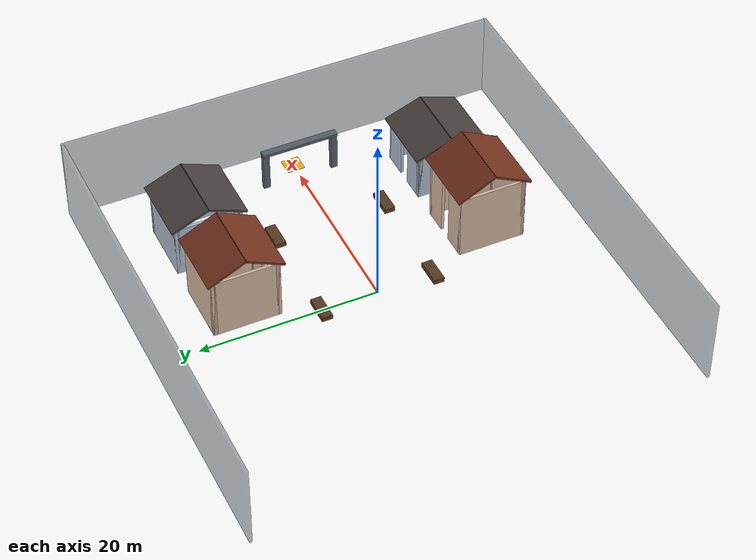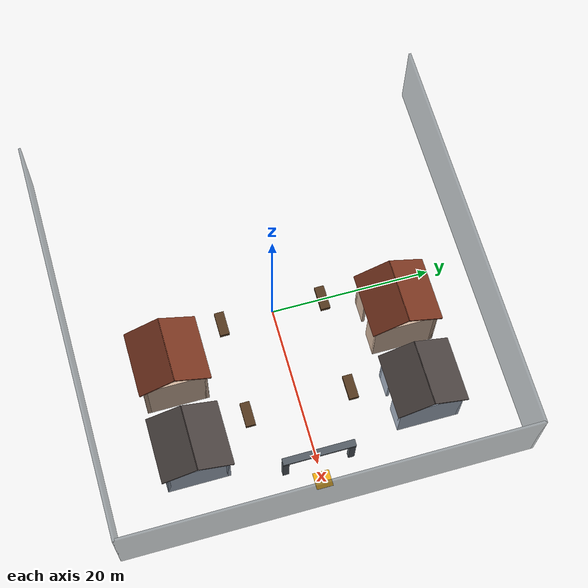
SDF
<sdf version="1.6">
 <world name="ego_residential_gable_50x50x10">
  <include><uri>model://sun</uri></include>
  <model name="north_boundary">
   <static>true</static>
   <pose>0.000 24.850 5.000 0 0 0</pose>
   <link name="link">
    <collision name="collision"><geometry><box><size>50.000 0.300 10.000</size></box></geometry></collision>
    <visual name="visual">
     <geometry><box><size>50.000 0.300 10.000</size></box></geometry>
     <material><ambient>0.200 0.250 0.280 1.000</ambient><diffuse>0.200 0.250 0.280 1.000</diffuse></material>
     <transparency>0.55</transparency>
    </visual>
   </link>
  </model>
  <model name="south_boundary">
   <static>true</static>
   <pose>0.000 -24.850 5.000 0 0 0</pose>
   <link name="link">
    <collision name="collision"><geometry><box><size>50.000 0.300 10.000</size></box></geometry></collision>
    <visual name="visual">
     <geometry><box><size>50.000 0.300 10.000</size></box></geometry>
     <material><ambient>0.200 0.250 0.280 1.000</ambient><diffuse>0.200 0.250 0.280 1.000</diffuse></material>
     <transparency>0.55</transparency>
    </visual>
   </link>
  </model>
  <model name="east_boundary">
   <static>true</static>
   <pose>24.850 0.000 5.000 0 0 0</pose>
   <link name="link">
    <collision name="collision"><geometry><box><size>0.300 50.000 10.000</size></box></geometry></collision>
    <visual name="visual">
     <geometry><box><size>0.300 50.000 10.000</size></box></geometry>
     <material><ambient>0.200 0.250 0.280 1.000</ambient><diffuse>0.200 0.250 0.280 1.000</diffuse></material>
     <transparency>0.55</transparency>
    </visual>
   </link>
  </model>
  <model name="east_goal_pad">
   <static>true</static>
   <pose>22.000 0.000 0.030 0 0 0</pose>
   <link name="link">
    <collision name="collision"><geometry><box><size>2.000 2.000 0.060</size></box></geometry></collision>
    <visual name="visual">
     <geometry><box><size>2.000 2.000 0.060</size></box></geometry>
     <material><ambient>0.950 0.680 0.080 1.000</ambient><diffuse>0.950 0.680 0.080 1.000</diffuse></material>
     <transparency>0.00</transparency>
    </visual>
   </link>
  </model>
  <model name="east_gate_left_post">
   <static>true</static>
   <pose>20.000 -4.000 2.250 0 0 0</pose>
   <link name="link">
    <collision name="collision"><geometry><box><size>0.550 0.750 4.500</size></box></geometry></collision>
    <visual name="visual">
     <geometry><box><size>0.550 0.750 4.500</size></box></geometry>
     <material><ambient>0.340 0.370 0.400 1.000</ambient><diffuse>0.340 0.370 0.400 1.000</diffuse></material>
     <transparency>0.00</transparency>
    </visual>
   </link>
  </model>
  <model name="east_gate_right_post">
   <static>true</static>
   <pose>20.000 4.000 2.250 0 0 0</pose>
   <link name="link">
    <collision name="collision"><geometry><box><size>0.550 0.750 4.500</size></box></geometry></collision>
    <visual name="visual">
     <geometry><box><size>0.550 0.750 4.500</size></box></geometry>
     <material><ambient>0.340 0.370 0.400 1.000</ambient><diffuse>0.340 0.370 0.400 1.000</diffuse></material>
     <transparency>0.00</transparency>
    </visual>
   </link>
  </model>
  <model name="east_gate_roof">
   <static>true</static>
   <pose>20.000 0.000 4.650 0 0 0</pose>
   <link name="link">
    <collision name="collision"><geometry><box><size>0.850 8.750 0.350</size></box></geometry></collision>
    <visual name="visual">
     <geometry><box><size>0.850 8.750 0.350</size></box></geometry>
     <material><ambient>0.340 0.370 0.400 1.000</ambient><diffuse>0.340 0.370 0.400 1.000</diffuse></material>
     <transparency>0.00</transparency>
    </visual>
   </link>
  </model>
  <model name="south_planter_2">
   <static>true</static>
   <pose>0.000 -6.400 0.280 0 0 0</pose>
   <link name="link">
    <collision name="collision"><geometry><box><size>3.000 1.200 0.560</size></box></geometry></collision>
    <visual name="visual">
     <geometry><box><size>3.000 1.200 0.560</size></box></geometry>
     <material><ambient>0.340 0.230 0.130 1.000</ambient><diffuse>0.340 0.230 0.130 1.000</diffuse></material>
     <transparency>0.00</transparency>
    </visual>
   </link>
  </model>
  <model name="south_planter_3">
   <static>true</static>
   <pose>12.000 -6.400 0.280 0 0 0</pose>
   <link name="link">
    <collision name="collision"><geometry><box><size>3.000 1.200 0.560</size></box></geometry></collision>
    <visual name="visual">
     <geometry><box><size>3.000 1.200 0.560</size></box></geometry>
     <material><ambient>0.340 0.230 0.130 1.000</ambient><diffuse>0.340 0.230 0.130 1.000</diffuse></material>
     <transparency>0.00</transparency>
    </visual>
   </link>
  </model>
  <model name="north_planter_2">
   <static>true</static>
   <pose>0.000 6.400 0.280 0 0 0</pose>
   <link name="link">
    <collision name="collision"><geometry><box><size>3.000 1.200 0.560</size></box></geometry></collision>
    <visual name="visual">
     <geometry><box><size>3.000 1.200 0.560</size></box></geometry>
     <material><ambient>0.340 0.230 0.130 1.000</ambient><diffuse>0.340 0.230 0.130 1.000</diffuse></material>
     <transparency>0.00</transparency>
    </visual>
   </link>
  </model>
  <model name="north_planter_3">
   <static>true</static>
   <pose>12.000 6.400 0.280 0 0 0</pose>
   <link name="link">
    <collision name="collision"><geometry><box><size>3.000 1.200 0.560</size></box></geometry></collision>
    <visual name="visual">
     <geometry><box><size>3.000 1.200 0.560</size></box></geometry>
     <material><ambient>0.340 0.230 0.130 1.000</ambient><diffuse>0.340 0.230 0.130 1.000</diffuse></material>
     <transparency>0.00</transparency>
    </visual>
   </link>
  </model>
  <model name="residence_03">
   <static>true</static>
   <pose>5.000 14.000 0 0 0 0</pose>
   <link name="building_link">
    <collision name="roof_north_collision">
     <pose>0.000 2.075 8.188 -0.453768 0.000000 0.000000</pose>
     <geometry><box><size>7.900 4.797 0.240</size></box></geometry>
    </collision>
    <visual name="roof_north_visual">
     <pose>0.000 2.075 8.188 -0.453768 0.000000 0.000000</pose>
     <geometry><box><size>7.900 4.797 0.240</size></box></geometry>
     <material><ambient>0.460 0.200 0.120 1.000</ambient><diffuse>0.460 0.200 0.120 1.000</diffuse></material>
    </visual>
    <collision name="roof_south_collision">
     <pose>0.000 -2.075 8.188 0.453768 0.000000 0.000000</pose>
     <geometry><box><size>7.900 4.797 0.240</size></box></geometry>
    </collision>
    <visual name="roof_south_visual">
     <pose>0.000 -2.075 8.188 0.453768 0.000000 0.000000</pose>
     <geometry><box><size>7.900 4.797 0.240</size></box></geometry>
     <material><ambient>0.460 0.200 0.120 1.000</ambient><diffuse>0.460 0.200 0.120 1.000</diffuse></material>
    </visual>
    <collision name="back_wall_collision">
     <pose>0.000 3.630 3.588 0.000000 0.000000 0.000000</pose>
     <geometry><box><size>7.200 0.340 7.176</size></box></geometry>
    </collision>
    <visual name="back_wall_visual">
     <pose>0.000 3.630 3.588 0.000000 0.000000 0.000000</pose>
     <geometry><box><size>7.200 0.340 7.176</size></box></geometry>
     <material><ambient>0.820 0.710 0.620 1.000</ambient><diffuse>0.820 0.710 0.620 1.000</diffuse></material>
    </visual>
    <collision name="left_wall_collision">
     <pose>-3.430 0.000 3.588 0.000000 0.000000 0.000000</pose>
     <geometry><box><size>0.340 7.600 7.176</size></box></geometry>
    </collision>
    <visual name="left_wall_visual">
     <pose>-3.430 0.000 3.588 0.000000 0.000000 0.000000</pose>
     <geometry><box><size>0.340 7.600 7.176</size></box></geometry>
     <material><ambient>0.820 0.710 0.620 1.000</ambient><diffuse>0.820 0.710 0.620 1.000</diffuse></material>
    </visual>
    <collision name="right_wall_collision">
     <pose>3.430 0.000 3.588 0.000000 0.000000 0.000000</pose>
     <geometry><box><size>0.340 7.600 7.176</size></box></geometry>
    </collision>
    <visual name="right_wall_visual">
     <pose>3.430 0.000 3.588 0.000000 0.000000 0.000000</pose>
     <geometry><box><size>0.340 7.600 7.176</size></box></geometry>
     <material><ambient>0.820 0.710 0.620 1.000</ambient><diffuse>0.820 0.710 0.620 1.000</diffuse></material>
    </visual>
    <collision name="front_left_collision">
     <pose>-2.200 -3.630 3.588 0.000000 0.000000 0.000000</pose>
     <geometry><box><size>2.800 0.340 7.176</size></box></geometry>
    </collision>
    <visual name="front_left_visual">
     <pose>-2.200 -3.630 3.588 0.000000 0.000000 0.000000</pose>
     <geometry><box><size>2.800 0.340 7.176</size></box></geometry>
     <material><ambient>0.820 0.710 0.620 1.000</ambient><diffuse>0.820 0.710 0.620 1.000</diffuse></material>
    </visual>
    <collision name="front_right_collision">
     <pose>2.200 -3.630 3.588 0.000000 0.000000 0.000000</pose>
     <geometry><box><size>2.800 0.340 7.176</size></box></geometry>
    </collision>
    <visual name="front_right_visual">
     <pose>2.200 -3.630 3.588 0.000000 0.000000 0.000000</pose>
     <geometry><box><size>2.800 0.340 7.176</size></box></geometry>
     <material><ambient>0.820 0.710 0.620 1.000</ambient><diffuse>0.820 0.710 0.620 1.000</diffuse></material>
    </visual>
    <collision name="door_lintel_collision">
     <pose>0.000 -3.630 6.726 0.000000 0.000000 0.000000</pose>
     <geometry><box><size>1.600 0.340 0.900</size></box></geometry>
    </collision>
    <visual name="door_lintel_visual">
     <pose>0.000 -3.630 6.726 0.000000 0.000000 0.000000</pose>
     <geometry><box><size>1.600 0.340 0.900</size></box></geometry>
     <material><ambient>0.820 0.710 0.620 1.000</ambient><diffuse>0.820 0.710 0.620 1.000</diffuse></material>
    </visual>
    <collision name="pillar_1_collision">
     <pose>-3.360 -3.560 3.588 0.000000 0.000000 0.000000</pose>
     <geometry><box><size>0.480 0.480 7.176</size></box></geometry>
    </collision>
    <visual name="pillar_1_visual">
     <pose>-3.360 -3.560 3.588 0.000000 0.000000 0.000000</pose>
     <geometry><box><size>0.480 0.480 7.176</size></box></geometry>
     <material><ambient>0.720 0.610 0.520 1.000</ambient><diffuse>0.720 0.610 0.520 1.000</diffuse></material>
    </visual>
    <collision name="pillar_2_collision">
     <pose>-3.360 3.560 3.588 0.000000 0.000000 0.000000</pose>
     <geometry><box><size>0.480 0.480 7.176</size></box></geometry>
    </collision>
    <visual name="pillar_2_visual">
     <pose>-3.360 3.560 3.588 0.000000 0.000000 0.000000</pose>
     <geometry><box><size>0.480 0.480 7.176</size></box></geometry>
     <material><ambient>0.720 0.610 0.520 1.000</ambient><diffuse>0.720 0.610 0.520 1.000</diffuse></material>
    </visual>
    <collision name="pillar_3_collision">
     <pose>3.360 -3.560 3.588 0.000000 0.000000 0.000000</pose>
     <geometry><box><size>0.480 0.480 7.176</size></box></geometry>
    </collision>
    <visual name="pillar_3_visual">
     <pose>3.360 -3.560 3.588 0.000000 0.000000 0.000000</pose>
     <geometry><box><size>0.480 0.480 7.176</size></box></geometry>
     <material><ambient>0.720 0.610 0.520 1.000</ambient><diffuse>0.720 0.610 0.520 1.000</diffuse></material>
    </visual>
    <collision name="pillar_4_collision">
     <pose>3.360 3.560 3.588 0.000000 0.000000 0.000000</pose>
     <geometry><box><size>0.480 0.480 7.176</size></box></geometry>
    </collision>
    <visual name="pillar_4_visual">
     <pose>3.360 3.560 3.588 0.000000 0.000000 0.000000</pose>
     <geometry><box><size>0.480 0.480 7.176</size></box></geometry>
     <material><ambient>0.720 0.610 0.520 1.000</ambient><diffuse>0.720 0.610 0.520 1.000</diffuse></material>
    </visual>
   </link>
  </model>
  <model name="residence_04">
   <static>true</static>
   <pose>15.000 14.000 0 0 0 0</pose>
   <link name="building_link">
    <collision name="roof_north_collision">
     <pose>0.000 2.075 6.942 -0.392085 0.000000 0.000000</pose>
     <geometry><box><size>7.900 4.671 0.240</size></box></geometry>
    </collision>
    <visual name="roof_north_visual">
     <pose>0.000 2.075 6.942 -0.392085 0.000000 0.000000</pose>
     <geometry><box><size>7.900 4.671 0.240</size></box></geometry>
     <material><ambient>0.280 0.250 0.240 1.000</ambient><diffuse>0.280 0.250 0.240 1.000</diffuse></material>
    </visual>
    <collision name="roof_south_collision">
     <pose>0.000 -2.075 6.942 0.392085 0.000000 0.000000</pose>
     <geometry><box><size>7.900 4.671 0.240</size></box></geometry>
    </collision>
    <visual name="roof_south_visual">
     <pose>0.000 -2.075 6.942 0.392085 0.000000 0.000000</pose>
     <geometry><box><size>7.900 4.671 0.240</size></box></geometry>
     <material><ambient>0.280 0.250 0.240 1.000</ambient><diffuse>0.280 0.250 0.240 1.000</diffuse></material>
    </visual>
    <collision name="back_wall_collision">
     <pose>0.000 3.630 3.042 0.000000 0.000000 0.000000</pose>
     <geometry><box><size>7.200 0.340 6.084</size></box></geometry>
    </collision>
    <visual name="back_wall_visual">
     <pose>0.000 3.630 3.042 0.000000 0.000000 0.000000</pose>
     <geometry><box><size>7.200 0.340 6.084</size></box></geometry>
     <material><ambient>0.680 0.730 0.800 1.000</ambient><diffuse>0.680 0.730 0.800 1.000</diffuse></material>
    </visual>
    <collision name="left_wall_collision">
     <pose>-3.430 0.000 3.042 0.000000 0.000000 0.000000</pose>
     <geometry><box><size>0.340 7.600 6.084</size></box></geometry>
    </collision>
    <visual name="left_wall_visual">
     <pose>-3.430 0.000 3.042 0.000000 0.000000 0.000000</pose>
     <geometry><box><size>0.340 7.600 6.084</size></box></geometry>
     <material><ambient>0.680 0.730 0.800 1.000</ambient><diffuse>0.680 0.730 0.800 1.000</diffuse></material>
    </visual>
    <collision name="right_wall_collision">
     <pose>3.430 0.000 3.042 0.000000 0.000000 0.000000</pose>
     <geometry><box><size>0.340 7.600 6.084</size></box></geometry>
    </collision>
    <visual name="right_wall_visual">
     <pose>3.430 0.000 3.042 0.000000 0.000000 0.000000</pose>
     <geometry><box><size>0.340 7.600 6.084</size></box></geometry>
     <material><ambient>0.680 0.730 0.800 1.000</ambient><diffuse>0.680 0.730 0.800 1.000</diffuse></material>
    </visual>
    <collision name="front_left_collision">
     <pose>-2.200 -3.630 3.042 0.000000 0.000000 0.000000</pose>
     <geometry><box><size>2.800 0.340 6.084</size></box></geometry>
    </collision>
    <visual name="front_left_visual">
     <pose>-2.200 -3.630 3.042 0.000000 0.000000 0.000000</pose>
     <geometry><box><size>2.800 0.340 6.084</size></box></geometry>
     <material><ambient>0.680 0.730 0.800 1.000</ambient><diffuse>0.680 0.730 0.800 1.000</diffuse></material>
    </visual>
    <collision name="front_right_collision">
     <pose>2.200 -3.630 3.042 0.000000 0.000000 0.000000</pose>
     <geometry><box><size>2.800 0.340 6.084</size></box></geometry>
    </collision>
    <visual name="front_right_visual">
     <pose>2.200 -3.630 3.042 0.000000 0.000000 0.000000</pose>
     <geometry><box><size>2.800 0.340 6.084</size></box></geometry>
     <material><ambient>0.680 0.730 0.800 1.000</ambient><diffuse>0.680 0.730 0.800 1.000</diffuse></material>
    </visual>
    <collision name="door_lintel_collision">
     <pose>0.000 -3.630 5.634 0.000000 0.000000 0.000000</pose>
     <geometry><box><size>1.600 0.340 0.900</size></box></geometry>
    </collision>
    <visual name="door_lintel_visual">
     <pose>0.000 -3.630 5.634 0.000000 0.000000 0.000000</pose>
     <geometry><box><size>1.600 0.340 0.900</size></box></geometry>
     <material><ambient>0.680 0.730 0.800 1.000</ambient><diffuse>0.680 0.730 0.800 1.000</diffuse></material>
    </visual>
    <collision name="pillar_1_collision">
     <pose>-3.360 -3.560 3.042 0.000000 0.000000 0.000000</pose>
     <geometry><box><size>0.480 0.480 6.084</size></box></geometry>
    </collision>
    <visual name="pillar_1_visual">
     <pose>-3.360 -3.560 3.042 0.000000 0.000000 0.000000</pose>
     <geometry><box><size>0.480 0.480 6.084</size></box></geometry>
     <material><ambient>0.580 0.630 0.700 1.000</ambient><diffuse>0.580 0.630 0.700 1.000</diffuse></material>
    </visual>
    <collision name="pillar_2_collision">
     <pose>-3.360 3.560 3.042 0.000000 0.000000 0.000000</pose>
     <geometry><box><size>0.480 0.480 6.084</size></box></geometry>
    </collision>
    <visual name="pillar_2_visual">
     <pose>-3.360 3.560 3.042 0.000000 0.000000 0.000000</pose>
     <geometry><box><size>0.480 0.480 6.084</size></box></geometry>
     <material><ambient>0.580 0.630 0.700 1.000</ambient><diffuse>0.580 0.630 0.700 1.000</diffuse></material>
    </visual>
    <collision name="pillar_3_collision">
     <pose>3.360 -3.560 3.042 0.000000 0.000000 0.000000</pose>
     <geometry><box><size>0.480 0.480 6.084</size></box></geometry>
    </collision>
    <visual name="pillar_3_visual">
     <pose>3.360 -3.560 3.042 0.000000 0.000000 0.000000</pose>
     <geometry><box><size>0.480 0.480 6.084</size></box></geometry>
     <material><ambient>0.580 0.630 0.700 1.000</ambient><diffuse>0.580 0.630 0.700 1.000</diffuse></material>
    </visual>
    <collision name="pillar_4_collision">
     <pose>3.360 3.560 3.042 0.000000 0.000000 0.000000</pose>
     <geometry><box><size>0.480 0.480 6.084</size></box></geometry>
    </collision>
    <visual name="pillar_4_visual">
     <pose>3.360 3.560 3.042 0.000000 0.000000 0.000000</pose>
     <geometry><box><size>0.480 0.480 6.084</size></box></geometry>
     <material><ambient>0.580 0.630 0.700 1.000</ambient><diffuse>0.580 0.630 0.700 1.000</diffuse></material>
    </visual>
   </link>
  </model>
  <model name="residence_07">
   <static>true</static>
   <pose>5.000 -14.000 0 0 0 0</pose>
   <link name="building_link">
    <collision name="roof_north_collision">
     <pose>0.000 2.075 8.722 -0.479140 0.000000 0.000000</pose>
     <geometry><box><size>7.900 4.857 0.240</size></box></geometry>
    </collision>
    <visual name="roof_north_visual">
     <pose>0.000 2.075 8.722 -0.479140 0.000000 0.000000</pose>
     <geometry><box><size>7.900 4.857 0.240</size></box></geometry>
     <material><ambient>0.460 0.200 0.120 1.000</ambient><diffuse>0.460 0.200 0.120 1.000</diffuse></material>
    </visual>
    <collision name="roof_south_collision">
     <pose>0.000 -2.075 8.722 0.479140 0.000000 0.000000</pose>
     <geometry><box><size>7.900 4.857 0.240</size></box></geometry>
    </collision>
    <visual name="roof_south_visual">
     <pose>0.000 -2.075 8.722 0.479140 0.000000 0.000000</pose>
     <geometry><box><size>7.900 4.857 0.240</size></box></geometry>
     <material><ambient>0.460 0.200 0.120 1.000</ambient><diffuse>0.460 0.200 0.120 1.000</diffuse></material>
    </visual>
    <collision name="back_wall_collision">
     <pose>0.000 -3.630 3.822 0.000000 0.000000 0.000000</pose>
     <geometry><box><size>7.200 0.340 7.644</size></box></geometry>
    </collision>
    <visual name="back_wall_visual">
     <pose>0.000 -3.630 3.822 0.000000 0.000000 0.000000</pose>
     <geometry><box><size>7.200 0.340 7.644</size></box></geometry>
     <material><ambient>0.820 0.710 0.620 1.000</ambient><diffuse>0.820 0.710 0.620 1.000</diffuse></material>
    </visual>
    <collision name="left_wall_collision">
     <pose>-3.430 0.000 3.822 0.000000 0.000000 0.000000</pose>
     <geometry><box><size>0.340 7.600 7.644</size></box></geometry>
    </collision>
    <visual name="left_wall_visual">
     <pose>-3.430 0.000 3.822 0.000000 0.000000 0.000000</pose>
     <geometry><box><size>0.340 7.600 7.644</size></box></geometry>
     <material><ambient>0.820 0.710 0.620 1.000</ambient><diffuse>0.820 0.710 0.620 1.000</diffuse></material>
    </visual>
    <collision name="right_wall_collision">
     <pose>3.430 0.000 3.822 0.000000 0.000000 0.000000</pose>
     <geometry><box><size>0.340 7.600 7.644</size></box></geometry>
    </collision>
    <visual name="right_wall_visual">
     <pose>3.430 0.000 3.822 0.000000 0.000000 0.000000</pose>
     <geometry><box><size>0.340 7.600 7.644</size></box></geometry>
     <material><ambient>0.820 0.710 0.620 1.000</ambient><diffuse>0.820 0.710 0.620 1.000</diffuse></material>
    </visual>
    <collision name="front_left_collision">
     <pose>-2.200 3.630 3.822 0.000000 0.000000 0.000000</pose>
     <geometry><box><size>2.800 0.340 7.644</size></box></geometry>
    </collision>
    <visual name="front_left_visual">
     <pose>-2.200 3.630 3.822 0.000000 0.000000 0.000000</pose>
     <geometry><box><size>2.800 0.340 7.644</size></box></geometry>
     <material><ambient>0.820 0.710 0.620 1.000</ambient><diffuse>0.820 0.710 0.620 1.000</diffuse></material>
    </visual>
    <collision name="front_right_collision">
     <pose>2.200 3.630 3.822 0.000000 0.000000 0.000000</pose>
     <geometry><box><size>2.800 0.340 7.644</size></box></geometry>
    </collision>
    <visual name="front_right_visual">
     <pose>2.200 3.630 3.822 0.000000 0.000000 0.000000</pose>
     <geometry><box><size>2.800 0.340 7.644</size></box></geometry>
     <material><ambient>0.820 0.710 0.620 1.000</ambient><diffuse>0.820 0.710 0.620 1.000</diffuse></material>
    </visual>
    <collision name="door_lintel_collision">
     <pose>0.000 3.630 7.194 0.000000 0.000000 0.000000</pose>
     <geometry><box><size>1.600 0.340 0.900</size></box></geometry>
    </collision>
    <visual name="door_lintel_visual">
     <pose>0.000 3.630 7.194 0.000000 0.000000 0.000000</pose>
     <geometry><box><size>1.600 0.340 0.900</size></box></geometry>
     <material><ambient>0.820 0.710 0.620 1.000</ambient><diffuse>0.820 0.710 0.620 1.000</diffuse></material>
    </visual>
    <collision name="pillar_1_collision">
     <pose>-3.360 -3.560 3.822 0.000000 0.000000 0.000000</pose>
     <geometry><box><size>0.480 0.480 7.644</size></box></geometry>
    </collision>
    <visual name="pillar_1_visual">
     <pose>-3.360 -3.560 3.822 0.000000 0.000000 0.000000</pose>
     <geometry><box><size>0.480 0.480 7.644</size></box></geometry>
     <material><ambient>0.720 0.610 0.520 1.000</ambient><diffuse>0.720 0.610 0.520 1.000</diffuse></material>
    </visual>
    <collision name="pillar_2_collision">
     <pose>-3.360 3.560 3.822 0.000000 0.000000 0.000000</pose>
     <geometry><box><size>0.480 0.480 7.644</size></box></geometry>
    </collision>
    <visual name="pillar_2_visual">
     <pose>-3.360 3.560 3.822 0.000000 0.000000 0.000000</pose>
     <geometry><box><size>0.480 0.480 7.644</size></box></geometry>
     <material><ambient>0.720 0.610 0.520 1.000</ambient><diffuse>0.720 0.610 0.520 1.000</diffuse></material>
    </visual>
    <collision name="pillar_3_collision">
     <pose>3.360 -3.560 3.822 0.000000 0.000000 0.000000</pose>
     <geometry><box><size>0.480 0.480 7.644</size></box></geometry>
    </collision>
    <visual name="pillar_3_visual">
     <pose>3.360 -3.560 3.822 0.000000 0.000000 0.000000</pose>
     <geometry><box><size>0.480 0.480 7.644</size></box></geometry>
     <material><ambient>0.720 0.610 0.520 1.000</ambient><diffuse>0.720 0.610 0.520 1.000</diffuse></material>
    </visual>
    <collision name="pillar_4_collision">
     <pose>3.360 3.560 3.822 0.000000 0.000000 0.000000</pose>
     <geometry><box><size>0.480 0.480 7.644</size></box></geometry>
    </collision>
    <visual name="pillar_4_visual">
     <pose>3.360 3.560 3.822 0.000000 0.000000 0.000000</pose>
     <geometry><box><size>0.480 0.480 7.644</size></box></geometry>
     <material><ambient>0.720 0.610 0.520 1.000</ambient><diffuse>0.720 0.610 0.520 1.000</diffuse></material>
    </visual>
   </link>
  </model>
  <model name="residence_08">
   <static>true</static>
   <pose>15.000 -14.000 0 0 0 0</pose>
   <link name="building_link">
    <collision name="roof_north_collision">
     <pose>0.000 2.075 6.230 -0.355333 0.000000 0.000000</pose>
     <geometry><box><size>7.900 4.607 0.240</size></box></geometry>
    </collision>
    <visual name="roof_north_visual">
     <pose>0.000 2.075 6.230 -0.355333 0.000000 0.000000</pose>
     <geometry><box><size>7.900 4.607 0.240</size></box></geometry>
     <material><ambient>0.280 0.250 0.240 1.000</ambient><diffuse>0.280 0.250 0.240 1.000</diffuse></material>
    </visual>
    <collision name="roof_south_collision">
     <pose>0.000 -2.075 6.230 0.355333 0.000000 0.000000</pose>
     <geometry><box><size>7.900 4.607 0.240</size></box></geometry>
    </collision>
    <visual name="roof_south_visual">
     <pose>0.000 -2.075 6.230 0.355333 0.000000 0.000000</pose>
     <geometry><box><size>7.900 4.607 0.240</size></box></geometry>
     <material><ambient>0.280 0.250 0.240 1.000</ambient><diffuse>0.280 0.250 0.240 1.000</diffuse></material>
    </visual>
    <collision name="back_wall_collision">
     <pose>0.000 -3.630 2.730 0.000000 0.000000 0.000000</pose>
     <geometry><box><size>7.200 0.340 5.460</size></box></geometry>
    </collision>
    <visual name="back_wall_visual">
     <pose>0.000 -3.630 2.730 0.000000 0.000000 0.000000</pose>
     <geometry><box><size>7.200 0.340 5.460</size></box></geometry>
     <material><ambient>0.680 0.730 0.800 1.000</ambient><diffuse>0.680 0.730 0.800 1.000</diffuse></material>
    </visual>
    <collision name="left_wall_collision">
     <pose>-3.430 0.000 2.730 0.000000 0.000000 0.000000</pose>
     <geometry><box><size>0.340 7.600 5.460</size></box></geometry>
    </collision>
    <visual name="left_wall_visual">
     <pose>-3.430 0.000 2.730 0.000000 0.000000 0.000000</pose>
     <geometry><box><size>0.340 7.600 5.460</size></box></geometry>
     <material><ambient>0.680 0.730 0.800 1.000</ambient><diffuse>0.680 0.730 0.800 1.000</diffuse></material>
    </visual>
    <collision name="right_wall_collision">
     <pose>3.430 0.000 2.730 0.000000 0.000000 0.000000</pose>
     <geometry><box><size>0.340 7.600 5.460</size></box></geometry>
    </collision>
    <visual name="right_wall_visual">
     <pose>3.430 0.000 2.730 0.000000 0.000000 0.000000</pose>
     <geometry><box><size>0.340 7.600 5.460</size></box></geometry>
     <material><ambient>0.680 0.730 0.800 1.000</ambient><diffuse>0.680 0.730 0.800 1.000</diffuse></material>
    </visual>
    <collision name="front_left_collision">
     <pose>-2.200 3.630 2.730 0.000000 0.000000 0.000000</pose>
     <geometry><box><size>2.800 0.340 5.460</size></box></geometry>
    </collision>
    <visual name="front_left_visual">
     <pose>-2.200 3.630 2.730 0.000000 0.000000 0.000000</pose>
     <geometry><box><size>2.800 0.340 5.460</size></box></geometry>
     <material><ambient>0.680 0.730 0.800 1.000</ambient><diffuse>0.680 0.730 0.800 1.000</diffuse></material>
    </visual>
    <collision name="front_right_collision">
     <pose>2.200 3.630 2.730 0.000000 0.000000 0.000000</pose>
     <geometry><box><size>2.800 0.340 5.460</size></box></geometry>
    </collision>
    <visual name="front_right_visual">
     <pose>2.200 3.630 2.730 0.000000 0.000000 0.000000</pose>
     <geometry><box><size>2.800 0.340 5.460</size></box></geometry>
     <material><ambient>0.680 0.730 0.800 1.000</ambient><diffuse>0.680 0.730 0.800 1.000</diffuse></material>
    </visual>
    <collision name="door_lintel_collision">
     <pose>0.000 3.630 5.010 0.000000 0.000000 0.000000</pose>
     <geometry><box><size>1.600 0.340 0.900</size></box></geometry>
    </collision>
    <visual name="door_lintel_visual">
     <pose>0.000 3.630 5.010 0.000000 0.000000 0.000000</pose>
     <geometry><box><size>1.600 0.340 0.900</size></box></geometry>
     <material><ambient>0.680 0.730 0.800 1.000</ambient><diffuse>0.680 0.730 0.800 1.000</diffuse></material>
    </visual>
    <collision name="pillar_1_collision">
     <pose>-3.360 -3.560 2.730 0.000000 0.000000 0.000000</pose>
     <geometry><box><size>0.480 0.480 5.460</size></box></geometry>
    </collision>
    <visual name="pillar_1_visual">
     <pose>-3.360 -3.560 2.730 0.000000 0.000000 0.000000</pose>
     <geometry><box><size>0.480 0.480 5.460</size></box></geometry>
     <material><ambient>0.580 0.630 0.700 1.000</ambient><diffuse>0.580 0.630 0.700 1.000</diffuse></material>
    </visual>
    <collision name="pillar_2_collision">
     <pose>-3.360 3.560 2.730 0.000000 0.000000 0.000000</pose>
     <geometry><box><size>0.480 0.480 5.460</size></box></geometry>
    </collision>
    <visual name="pillar_2_visual">
     <pose>-3.360 3.560 2.730 0.000000 0.000000 0.000000</pose>
     <geometry><box><size>0.480 0.480 5.460</size></box></geometry>
     <material><ambient>0.580 0.630 0.700 1.000</ambient><diffuse>0.580 0.630 0.700 1.000</diffuse></material>
    </visual>
    <collision name="pillar_3_collision">
     <pose>3.360 -3.560 2.730 0.000000 0.000000 0.000000</pose>
     <geometry><box><size>0.480 0.480 5.460</size></box></geometry>
    </collision>
    <visual name="pillar_3_visual">
     <pose>3.360 -3.560 2.730 0.000000 0.000000 0.000000</pose>
     <geometry><box><size>0.480 0.480 5.460</size></box></geometry>
     <material><ambient>0.580 0.630 0.700 1.000</ambient><diffuse>0.580 0.630 0.700 1.000</diffuse></material>
    </visual>
    <collision name="pillar_4_collision">
     <pose>3.360 3.560 2.730 0.000000 0.000000 0.000000</pose>
     <geometry><box><size>0.480 0.480 5.460</size></box></geometry>
    </collision>
    <visual name="pillar_4_visual">
     <pose>3.360 3.560 2.730 0.000000 0.000000 0.000000</pose>
     <geometry><box><size>0.480 0.480 5.460</size></box></geometry>
     <material><ambient>0.580 0.630 0.700 1.000</ambient><diffuse>0.580 0.630 0.700 1.000</diffuse></material>
    </visual>
   </link>
  </model>
 </world>
</sdf>
